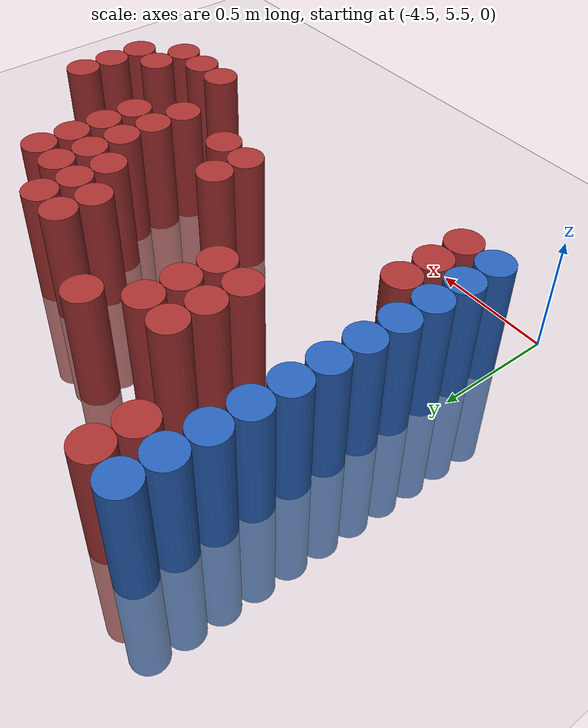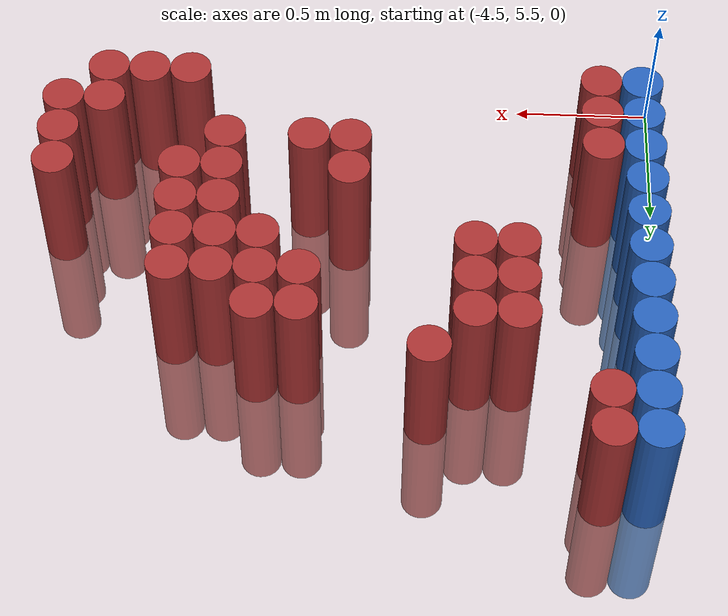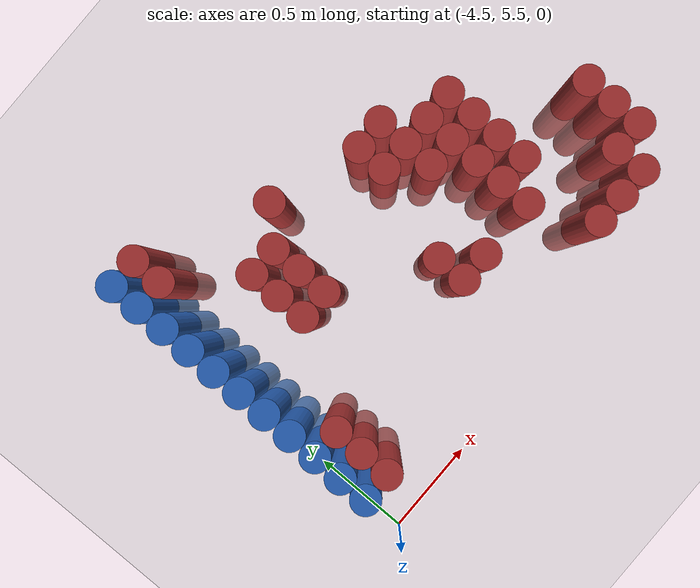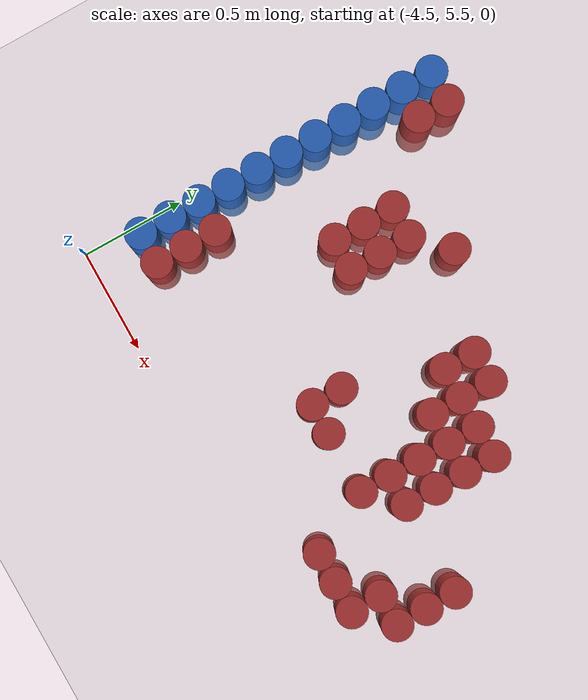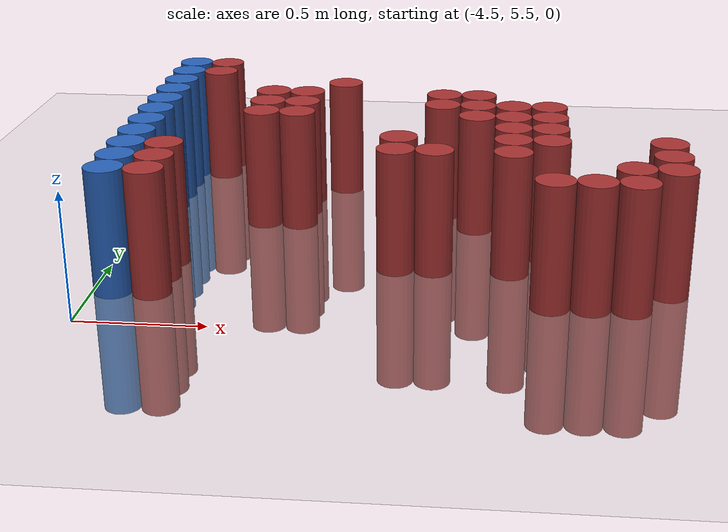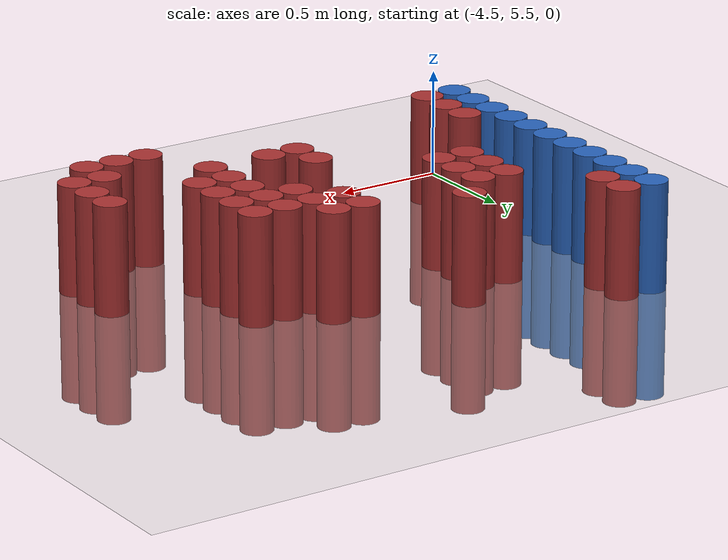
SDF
<sdf version="1.6">
 <world name="default">
  <model name="ground_plane">
   <static>1</static>
   <link name="link">
    <collision name="collision">
     <geometry><plane><normal>0 0 1</normal><size>100 100</size></plane></geometry>
     <surface><friction><ode><mu>100</mu><mu2>50</mu2></ode></friction></surface>
    </collision>
    <visual name="visual">
     <cast_shadows>0</cast_shadows>
     <geometry><plane><normal>0 0 1</normal><size>100 100</size></plane></geometry>
     <material>
      <script><uri>file://media/materials/scripts/gazebo.material</uri><name>Gazebo/Grey</name></script>
     </material>
    </visual>
   </link>
  </model>
  <model name="unit_cylinder_100">
   <static>1</static>
   <pose>-4.425000 5.775000 0.000000 0.000000 0.000000 0.000000</pose>
   <link name="link">
    <inertial>
     <mass>1</mass>
     <inertia><ixx>0.145833</ixx><ixy>0</ixy><ixz>0</ixz><iyy>0.145833</iyy><iyz>0</iyz><izz>0.125</izz></inertia>
    </inertial>
    <collision name="collision">
     <geometry><cylinder><radius>0.075000</radius><length>1</length></cylinder></geometry>
    </collision>
    <visual name="visual">
     <geometry><cylinder><radius>0.075000</radius><length>1</length></cylinder></geometry>
     <material>
      <ambient>0.152000 0.379000 0.720000 1</ambient>
      <diffuse>0.152000 0.379000 0.720000 1</diffuse>
     </material>
     <material>
      <script><name>Gazebo/Grey</name><uri>file://media/materials/scripts/gazebo.material</uri></script>
     </material>
    </visual>
   </link>
  </model>
  <model name="unit_cylinder_101">
   <static>1</static>
   <pose>-4.425000 5.925000 0.000000 0.000000 0.000000 0.000000</pose>
   <link name="link">
    <inertial>
     <mass>1</mass>
     <inertia><ixx>0.145833</ixx><ixy>0</ixy><ixz>0</ixz><iyy>0.145833</iyy><iyz>0</iyz><izz>0.125</izz></inertia>
    </inertial>
    <collision name="collision">
     <geometry><cylinder><radius>0.075000</radius><length>1</length></cylinder></geometry>
    </collision>
    <visual name="visual">
     <geometry><cylinder><radius>0.075000</radius><length>1</length></cylinder></geometry>
     <material>
      <ambient>0.152000 0.379000 0.720000 1</ambient>
      <diffuse>0.152000 0.379000 0.720000 1</diffuse>
     </material>
     <material>
      <script><name>Gazebo/Grey</name><uri>file://media/materials/scripts/gazebo.material</uri></script>
     </material>
    </visual>
   </link>
  </model>
  <model name="unit_cylinder_102">
   <static>1</static>
   <pose>-4.425000 6.075000 0.000000 0.000000 0.000000 0.000000</pose>
   <link name="link">
    <inertial>
     <mass>1</mass>
     <inertia><ixx>0.145833</ixx><ixy>0</ixy><ixz>0</ixz><iyy>0.145833</iyy><iyz>0</iyz><izz>0.125</izz></inertia>
    </inertial>
    <collision name="collision">
     <geometry><cylinder><radius>0.075000</radius><length>1</length></cylinder></geometry>
    </collision>
    <visual name="visual">
     <geometry><cylinder><radius>0.075000</radius><length>1</length></cylinder></geometry>
     <material>
      <ambient>0.152000 0.379000 0.720000 1</ambient>
      <diffuse>0.152000 0.379000 0.720000 1</diffuse>
     </material>
     <material>
      <script><name>Gazebo/Grey</name><uri>file://media/materials/scripts/gazebo.material</uri></script>
     </material>
    </visual>
   </link>
  </model>
  <model name="unit_cylinder_103">
   <static>1</static>
   <pose>-4.425000 6.225000 0.000000 0.000000 0.000000 0.000000</pose>
   <link name="link">
    <inertial>
     <mass>1</mass>
     <inertia><ixx>0.145833</ixx><ixy>0</ixy><ixz>0</ixz><iyy>0.145833</iyy><iyz>0</iyz><izz>0.125</izz></inertia>
    </inertial>
    <collision name="collision">
     <geometry><cylinder><radius>0.075000</radius><length>1</length></cylinder></geometry>
    </collision>
    <visual name="visual">
     <geometry><cylinder><radius>0.075000</radius><length>1</length></cylinder></geometry>
     <material>
      <ambient>0.152000 0.379000 0.720000 1</ambient>
      <diffuse>0.152000 0.379000 0.720000 1</diffuse>
     </material>
     <material>
      <script><name>Gazebo/Grey</name><uri>file://media/materials/scripts/gazebo.material</uri></script>
     </material>
    </visual>
   </link>
  </model>
  <model name="unit_cylinder_104">
   <static>1</static>
   <pose>-4.425000 6.375000 0.000000 0.000000 0.000000 0.000000</pose>
   <link name="link">
    <inertial>
     <mass>1</mass>
     <inertia><ixx>0.145833</ixx><ixy>0</ixy><ixz>0</ixz><iyy>0.145833</iyy><iyz>0</iyz><izz>0.125</izz></inertia>
    </inertial>
    <collision name="collision">
     <geometry><cylinder><radius>0.075000</radius><length>1</length></cylinder></geometry>
    </collision>
    <visual name="visual">
     <geometry><cylinder><radius>0.075000</radius><length>1</length></cylinder></geometry>
     <material>
      <ambient>0.152000 0.379000 0.720000 1</ambient>
      <diffuse>0.152000 0.379000 0.720000 1</diffuse>
     </material>
     <material>
      <script><name>Gazebo/Grey</name><uri>file://media/materials/scripts/gazebo.material</uri></script>
     </material>
    </visual>
   </link>
  </model>
  <model name="unit_cylinder_105">
   <static>1</static>
   <pose>-4.425000 6.525000 0.000000 0.000000 0.000000 0.000000</pose>
   <link name="link">
    <inertial>
     <mass>1</mass>
     <inertia><ixx>0.145833</ixx><ixy>0</ixy><ixz>0</ixz><iyy>0.145833</iyy><iyz>0</iyz><izz>0.125</izz></inertia>
    </inertial>
    <collision name="collision">
     <geometry><cylinder><radius>0.075000</radius><length>1</length></cylinder></geometry>
    </collision>
    <visual name="visual">
     <geometry><cylinder><radius>0.075000</radius><length>1</length></cylinder></geometry>
     <material>
      <ambient>0.152000 0.379000 0.720000 1</ambient>
      <diffuse>0.152000 0.379000 0.720000 1</diffuse>
     </material>
     <material>
      <script><name>Gazebo/Grey</name><uri>file://media/materials/scripts/gazebo.material</uri></script>
     </material>
    </visual>
   </link>
  </model>
  <model name="unit_cylinder_106">
   <static>1</static>
   <pose>-4.425000 6.675000 0.000000 0.000000 0.000000 0.000000</pose>
   <link name="link">
    <inertial>
     <mass>1</mass>
     <inertia><ixx>0.145833</ixx><ixy>0</ixy><ixz>0</ixz><iyy>0.145833</iyy><iyz>0</iyz><izz>0.125</izz></inertia>
    </inertial>
    <collision name="collision">
     <geometry><cylinder><radius>0.075000</radius><length>1</length></cylinder></geometry>
    </collision>
    <visual name="visual">
     <geometry><cylinder><radius>0.075000</radius><length>1</length></cylinder></geometry>
     <material>
      <ambient>0.152000 0.379000 0.720000 1</ambient>
      <diffuse>0.152000 0.379000 0.720000 1</diffuse>
     </material>
     <material>
      <script><name>Gazebo/Grey</name><uri>file://media/materials/scripts/gazebo.material</uri></script>
     </material>
    </visual>
   </link>
  </model>
  <model name="unit_cylinder_107">
   <static>1</static>
   <pose>-4.425000 6.825000 0.000000 0.000000 0.000000 0.000000</pose>
   <link name="link">
    <inertial>
     <mass>1</mass>
     <inertia><ixx>0.145833</ixx><ixy>0</ixy><ixz>0</ixz><iyy>0.145833</iyy><iyz>0</iyz><izz>0.125</izz></inertia>
    </inertial>
    <collision name="collision">
     <geometry><cylinder><radius>0.075000</radius><length>1</length></cylinder></geometry>
    </collision>
    <visual name="visual">
     <geometry><cylinder><radius>0.075000</radius><length>1</length></cylinder></geometry>
     <material>
      <ambient>0.152000 0.379000 0.720000 1</ambient>
      <diffuse>0.152000 0.379000 0.720000 1</diffuse>
     </material>
     <material>
      <script><name>Gazebo/Grey</name><uri>file://media/materials/scripts/gazebo.material</uri></script>
     </material>
    </visual>
   </link>
  </model>
  <model name="unit_cylinder_108">
   <static>1</static>
   <pose>-4.425000 6.975000 0.000000 0.000000 0.000000 0.000000</pose>
   <link name="link">
    <inertial>
     <mass>1</mass>
     <inertia><ixx>0.145833</ixx><ixy>0</ixy><ixz>0</ixz><iyy>0.145833</iyy><iyz>0</iyz><izz>0.125</izz></inertia>
    </inertial>
    <collision name="collision">
     <geometry><cylinder><radius>0.075000</radius><length>1</length></cylinder></geometry>
    </collision>
    <visual name="visual">
     <geometry><cylinder><radius>0.075000</radius><length>1</length></cylinder></geometry>
     <material>
      <ambient>0.152000 0.379000 0.720000 1</ambient>
      <diffuse>0.152000 0.379000 0.720000 1</diffuse>
     </material>
     <material>
      <script><name>Gazebo/Grey</name><uri>file://media/materials/scripts/gazebo.material</uri></script>
     </material>
    </visual>
   </link>
  </model>
  <model name="unit_cylinder_109">
   <static>1</static>
   <pose>-4.425000 7.125000 0.000000 0.000000 0.000000 0.000000</pose>
   <link name="link">
    <inertial>
     <mass>1</mass>
     <inertia><ixx>0.145833</ixx><ixy>0</ixy><ixz>0</ixz><iyy>0.145833</iyy><iyz>0</iyz><izz>0.125</izz></inertia>
    </inertial>
    <collision name="collision">
     <geometry><cylinder><radius>0.075000</radius><length>1</length></cylinder></geometry>
    </collision>
    <visual name="visual">
     <geometry><cylinder><radius>0.075000</radius><length>1</length></cylinder></geometry>
     <material>
      <ambient>0.152000 0.379000 0.720000 1</ambient>
      <diffuse>0.152000 0.379000 0.720000 1</diffuse>
     </material>
     <material>
      <script><name>Gazebo/Grey</name><uri>file://media/materials/scripts/gazebo.material</uri></script>
     </material>
    </visual>
   </link>
  </model>
  <model name="unit_cylinder_110">
   <static>1</static>
   <pose>-4.425000 7.275000 0.000000 0.000000 0.000000 0.000000</pose>
   <link name="link">
    <inertial>
     <mass>1</mass>
     <inertia><ixx>0.145833</ixx><ixy>0</ixy><ixz>0</ixz><iyy>0.145833</iyy><iyz>0</iyz><izz>0.125</izz></inertia>
    </inertial>
    <collision name="collision">
     <geometry><cylinder><radius>0.075000</radius><length>1</length></cylinder></geometry>
    </collision>
    <visual name="visual">
     <geometry><cylinder><radius>0.075000</radius><length>1</length></cylinder></geometry>
     <material>
      <ambient>0.152000 0.379000 0.720000 1</ambient>
      <diffuse>0.152000 0.379000 0.720000 1</diffuse>
     </material>
     <material>
      <script><name>Gazebo/Grey</name><uri>file://media/materials/scripts/gazebo.material</uri></script>
     </material>
    </visual>
   </link>
  </model>
  <model name="unit_cylinder_130">
   <static>1</static>
   <pose>-4.275000 5.775000 0.000000 0.000000 0.000000 0.000000</pose>
   <link name="link">
    <inertial>
     <mass>1</mass>
     <inertia><ixx>0.145833</ixx><ixy>0</ixy><ixz>0</ixz><iyy>0.145833</iyy><iyz>0</iyz><izz>0.125</izz></inertia>
    </inertial>
    <collision name="collision">
     <geometry><cylinder><radius>0.075000</radius><length>1</length></cylinder></geometry>
    </collision>
    <visual name="visual">
     <geometry><cylinder><radius>0.075000</radius><length>1</length></cylinder></geometry>
     <material>
      <ambient>0.648000 0.192000 0.192000 1</ambient>
      <diffuse>0.648000 0.192000 0.192000 1</diffuse>
     </material>
     <material>
      <script><name>Gazebo/Grey</name><uri>file://media/materials/scripts/gazebo.material</uri></script>
     </material>
    </visual>
   </link>
  </model>
  <model name="unit_cylinder_131">
   <static>1</static>
   <pose>-4.275000 5.925000 0.000000 0.000000 0.000000 0.000000</pose>
   <link name="link">
    <inertial>
     <mass>1</mass>
     <inertia><ixx>0.145833</ixx><ixy>0</ixy><ixz>0</ixz><iyy>0.145833</iyy><iyz>0</iyz><izz>0.125</izz></inertia>
    </inertial>
    <collision name="collision">
     <geometry><cylinder><radius>0.075000</radius><length>1</length></cylinder></geometry>
    </collision>
    <visual name="visual">
     <geometry><cylinder><radius>0.075000</radius><length>1</length></cylinder></geometry>
     <material>
      <ambient>0.648000 0.192000 0.192000 1</ambient>
      <diffuse>0.648000 0.192000 0.192000 1</diffuse>
     </material>
     <material>
      <script><name>Gazebo/Grey</name><uri>file://media/materials/scripts/gazebo.material</uri></script>
     </material>
    </visual>
   </link>
  </model>
  <model name="unit_cylinder_132">
   <static>1</static>
   <pose>-4.275000 6.075000 0.000000 0.000000 0.000000 0.000000</pose>
   <link name="link">
    <inertial>
     <mass>1</mass>
     <inertia><ixx>0.145833</ixx><ixy>0</ixy><ixz>0</ixz><iyy>0.145833</iyy><iyz>0</iyz><izz>0.125</izz></inertia>
    </inertial>
    <collision name="collision">
     <geometry><cylinder><radius>0.075000</radius><length>1</length></cylinder></geometry>
    </collision>
    <visual name="visual">
     <geometry><cylinder><radius>0.075000</radius><length>1</length></cylinder></geometry>
     <material>
      <ambient>0.648000 0.192000 0.192000 1</ambient>
      <diffuse>0.648000 0.192000 0.192000 1</diffuse>
     </material>
     <material>
      <script><name>Gazebo/Grey</name><uri>file://media/materials/scripts/gazebo.material</uri></script>
     </material>
    </visual>
   </link>
  </model>
  <model name="unit_cylinder_133">
   <static>1</static>
   <pose>-4.275000 7.125000 0.000000 0.000000 0.000000 0.000000</pose>
   <link name="link">
    <inertial>
     <mass>1</mass>
     <inertia><ixx>0.145833</ixx><ixy>0</ixy><ixz>0</ixz><iyy>0.145833</iyy><iyz>0</iyz><izz>0.125</izz></inertia>
    </inertial>
    <collision name="collision">
     <geometry><cylinder><radius>0.075000</radius><length>1</length></cylinder></geometry>
    </collision>
    <visual name="visual">
     <geometry><cylinder><radius>0.075000</radius><length>1</length></cylinder></geometry>
     <material>
      <ambient>0.648000 0.192000 0.192000 1</ambient>
      <diffuse>0.648000 0.192000 0.192000 1</diffuse>
     </material>
     <material>
      <script><name>Gazebo/Grey</name><uri>file://media/materials/scripts/gazebo.material</uri></script>
     </material>
    </visual>
   </link>
  </model>
  <model name="unit_cylinder_134">
   <static>1</static>
   <pose>-4.275000 7.275000 0.000000 0.000000 0.000000 0.000000</pose>
   <link name="link">
    <inertial>
     <mass>1</mass>
     <inertia><ixx>0.145833</ixx><ixy>0</ixy><ixz>0</ixz><iyy>0.145833</iyy><iyz>0</iyz><izz>0.125</izz></inertia>
    </inertial>
    <collision name="collision">
     <geometry><cylinder><radius>0.075000</radius><length>1</length></cylinder></geometry>
    </collision>
    <visual name="visual">
     <geometry><cylinder><radius>0.075000</radius><length>1</length></cylinder></geometry>
     <material>
      <ambient>0.648000 0.192000 0.192000 1</ambient>
      <diffuse>0.648000 0.192000 0.192000 1</diffuse>
     </material>
     <material>
      <script><name>Gazebo/Grey</name><uri>file://media/materials/scripts/gazebo.material</uri></script>
     </material>
    </visual>
   </link>
  </model>
  <model name="unit_cylinder_145">
   <static>1</static>
   <pose>-3.975000 6.525000 0.000000 0.000000 0.000000 0.000000</pose>
   <link name="link">
    <inertial>
     <mass>1</mass>
     <inertia><ixx>0.145833</ixx><ixy>0</ixy><ixz>0</ixz><iyy>0.145833</iyy><iyz>0</iyz><izz>0.125</izz></inertia>
    </inertial>
    <collision name="collision">
     <geometry><cylinder><radius>0.075000</radius><length>1</length></cylinder></geometry>
    </collision>
    <visual name="visual">
     <geometry><cylinder><radius>0.075000</radius><length>1</length></cylinder></geometry>
     <material>
      <ambient>0.648000 0.192000 0.192000 1</ambient>
      <diffuse>0.648000 0.192000 0.192000 1</diffuse>
     </material>
     <material>
      <script><name>Gazebo/Grey</name><uri>file://media/materials/scripts/gazebo.material</uri></script>
     </material>
    </visual>
   </link>
  </model>
  <model name="unit_cylinder_146">
   <static>1</static>
   <pose>-3.975000 6.675000 0.000000 0.000000 0.000000 0.000000</pose>
   <link name="link">
    <inertial>
     <mass>1</mass>
     <inertia><ixx>0.145833</ixx><ixy>0</ixy><ixz>0</ixz><iyy>0.145833</iyy><iyz>0</iyz><izz>0.125</izz></inertia>
    </inertial>
    <collision name="collision">
     <geometry><cylinder><radius>0.075000</radius><length>1</length></cylinder></geometry>
    </collision>
    <visual name="visual">
     <geometry><cylinder><radius>0.075000</radius><length>1</length></cylinder></geometry>
     <material>
      <ambient>0.648000 0.192000 0.192000 1</ambient>
      <diffuse>0.648000 0.192000 0.192000 1</diffuse>
     </material>
     <material>
      <script><name>Gazebo/Grey</name><uri>file://media/materials/scripts/gazebo.material</uri></script>
     </material>
    </visual>
   </link>
  </model>
  <model name="unit_cylinder_147">
   <static>1</static>
   <pose>-3.975000 6.825000 0.000000 0.000000 0.000000 0.000000</pose>
   <link name="link">
    <inertial>
     <mass>1</mass>
     <inertia><ixx>0.145833</ixx><ixy>0</ixy><ixz>0</ixz><iyy>0.145833</iyy><iyz>0</iyz><izz>0.125</izz></inertia>
    </inertial>
    <collision name="collision">
     <geometry><cylinder><radius>0.075000</radius><length>1</length></cylinder></geometry>
    </collision>
    <visual name="visual">
     <geometry><cylinder><radius>0.075000</radius><length>1</length></cylinder></geometry>
     <material>
      <ambient>0.648000 0.192000 0.192000 1</ambient>
      <diffuse>0.648000 0.192000 0.192000 1</diffuse>
     </material>
     <material>
      <script><name>Gazebo/Grey</name><uri>file://media/materials/scripts/gazebo.material</uri></script>
     </material>
    </visual>
   </link>
  </model>
  <model name="unit_cylinder_149">
   <static>1</static>
   <pose>-3.825000 6.525000 0.000000 0.000000 0.000000 0.000000</pose>
   <link name="link">
    <inertial>
     <mass>1</mass>
     <inertia><ixx>0.145833</ixx><ixy>0</ixy><ixz>0</ixz><iyy>0.145833</iyy><iyz>0</iyz><izz>0.125</izz></inertia>
    </inertial>
    <collision name="collision">
     <geometry><cylinder><radius>0.075000</radius><length>1</length></cylinder></geometry>
    </collision>
    <visual name="visual">
     <geometry><cylinder><radius>0.075000</radius><length>1</length></cylinder></geometry>
     <material>
      <ambient>0.648000 0.192000 0.192000 1</ambient>
      <diffuse>0.648000 0.192000 0.192000 1</diffuse>
     </material>
     <material>
      <script><name>Gazebo/Grey</name><uri>file://media/materials/scripts/gazebo.material</uri></script>
     </material>
    </visual>
   </link>
  </model>
  <model name="unit_cylinder_150">
   <static>1</static>
   <pose>-3.825000 6.675000 0.000000 0.000000 0.000000 0.000000</pose>
   <link name="link">
    <inertial>
     <mass>1</mass>
     <inertia><ixx>0.145833</ixx><ixy>0</ixy><ixz>0</ixz><iyy>0.145833</iyy><iyz>0</iyz><izz>0.125</izz></inertia>
    </inertial>
    <collision name="collision">
     <geometry><cylinder><radius>0.075000</radius><length>1</length></cylinder></geometry>
    </collision>
    <visual name="visual">
     <geometry><cylinder><radius>0.075000</radius><length>1</length></cylinder></geometry>
     <material>
      <ambient>0.648000 0.192000 0.192000 1</ambient>
      <diffuse>0.648000 0.192000 0.192000 1</diffuse>
     </material>
     <material>
      <script><name>Gazebo/Grey</name><uri>file://media/materials/scripts/gazebo.material</uri></script>
     </material>
    </visual>
   </link>
  </model>
  <model name="unit_cylinder_151">
   <static>1</static>
   <pose>-3.825000 6.825000 0.000000 0.000000 0.000000 0.000000</pose>
   <link name="link">
    <inertial>
     <mass>1</mass>
     <inertia><ixx>0.145833</ixx><ixy>0</ixy><ixz>0</ixz><iyy>0.145833</iyy><iyz>0</iyz><izz>0.125</izz></inertia>
    </inertial>
    <collision name="collision">
     <geometry><cylinder><radius>0.075000</radius><length>1</length></cylinder></geometry>
    </collision>
    <visual name="visual">
     <geometry><cylinder><radius>0.075000</radius><length>1</length></cylinder></geometry>
     <material>
      <ambient>0.648000 0.192000 0.192000 1</ambient>
      <diffuse>0.648000 0.192000 0.192000 1</diffuse>
     </material>
     <material>
      <script><name>Gazebo/Grey</name><uri>file://media/materials/scripts/gazebo.material</uri></script>
     </material>
    </visual>
   </link>
  </model>
  <model name="unit_cylinder_155">
   <static>1</static>
   <pose>-3.675000 6.975000 0.000000 0.000000 0.000000 0.000000</pose>
   <link name="link">
    <inertial>
     <mass>1</mass>
     <inertia><ixx>0.145833</ixx><ixy>0</ixy><ixz>0</ixz><iyy>0.145833</iyy><iyz>0</iyz><izz>0.125</izz></inertia>
    </inertial>
    <collision name="collision">
     <geometry><cylinder><radius>0.075000</radius><length>1</length></cylinder></geometry>
    </collision>
    <visual name="visual">
     <geometry><cylinder><radius>0.075000</radius><length>1</length></cylinder></geometry>
     <material>
      <ambient>0.648000 0.192000 0.192000 1</ambient>
      <diffuse>0.648000 0.192000 0.192000 1</diffuse>
     </material>
     <material>
      <script><name>Gazebo/Grey</name><uri>file://media/materials/scripts/gazebo.material</uri></script>
     </material>
    </visual>
   </link>
  </model>
  <model name="unit_cylinder_165">
   <static>1</static>
   <pose>-3.375000 6.075000 0.000000 0.000000 0.000000 0.000000</pose>
   <link name="link">
    <inertial>
     <mass>1</mass>
     <inertia><ixx>0.145833</ixx><ixy>0</ixy><ixz>0</ixz><iyy>0.145833</iyy><iyz>0</iyz><izz>0.125</izz></inertia>
    </inertial>
    <collision name="collision">
     <geometry><cylinder><radius>0.075000</radius><length>1</length></cylinder></geometry>
    </collision>
    <visual name="visual">
     <geometry><cylinder><radius>0.075000</radius><length>1</length></cylinder></geometry>
     <material>
      <ambient>0.648000 0.192000 0.192000 1</ambient>
      <diffuse>0.648000 0.192000 0.192000 1</diffuse>
     </material>
     <material>
      <script><name>Gazebo/Grey</name><uri>file://media/materials/scripts/gazebo.material</uri></script>
     </material>
    </visual>
   </link>
  </model>
  <model name="unit_cylinder_166">
   <static>1</static>
   <pose>-3.375000 6.225000 0.000000 0.000000 0.000000 0.000000</pose>
   <link name="link">
    <inertial>
     <mass>1</mass>
     <inertia><ixx>0.145833</ixx><ixy>0</ixy><ixz>0</ixz><iyy>0.145833</iyy><iyz>0</iyz><izz>0.125</izz></inertia>
    </inertial>
    <collision name="collision">
     <geometry><cylinder><radius>0.075000</radius><length>1</length></cylinder></geometry>
    </collision>
    <visual name="visual">
     <geometry><cylinder><radius>0.075000</radius><length>1</length></cylinder></geometry>
     <material>
      <ambient>0.648000 0.192000 0.192000 1</ambient>
      <diffuse>0.648000 0.192000 0.192000 1</diffuse>
     </material>
     <material>
      <script><name>Gazebo/Grey</name><uri>file://media/materials/scripts/gazebo.material</uri></script>
     </material>
    </visual>
   </link>
  </model>
  <model name="unit_cylinder_171">
   <static>1</static>
   <pose>-3.225000 6.075000 0.000000 0.000000 0.000000 0.000000</pose>
   <link name="link">
    <inertial>
     <mass>1</mass>
     <inertia><ixx>0.145833</ixx><ixy>0</ixy><ixz>0</ixz><iyy>0.145833</iyy><iyz>0</iyz><izz>0.125</izz></inertia>
    </inertial>
    <collision name="collision">
     <geometry><cylinder><radius>0.075000</radius><length>1</length></cylinder></geometry>
    </collision>
    <visual name="visual">
     <geometry><cylinder><radius>0.075000</radius><length>1</length></cylinder></geometry>
     <material>
      <ambient>0.648000 0.192000 0.192000 1</ambient>
      <diffuse>0.648000 0.192000 0.192000 1</diffuse>
     </material>
     <material>
      <script><name>Gazebo/Grey</name><uri>file://media/materials/scripts/gazebo.material</uri></script>
     </material>
    </visual>
   </link>
  </model>
  <model name="unit_cylinder_172">
   <static>1</static>
   <pose>-3.225000 6.675000 0.000000 0.000000 0.000000 0.000000</pose>
   <link name="link">
    <inertial>
     <mass>1</mass>
     <inertia><ixx>0.145833</ixx><ixy>0</ixy><ixz>0</ixz><iyy>0.145833</iyy><iyz>0</iyz><izz>0.125</izz></inertia>
    </inertial>
    <collision name="collision">
     <geometry><cylinder><radius>0.075000</radius><length>1</length></cylinder></geometry>
    </collision>
    <visual name="visual">
     <geometry><cylinder><radius>0.075000</radius><length>1</length></cylinder></geometry>
     <material>
      <ambient>0.648000 0.192000 0.192000 1</ambient>
      <diffuse>0.648000 0.192000 0.192000 1</diffuse>
     </material>
     <material>
      <script><name>Gazebo/Grey</name><uri>file://media/materials/scripts/gazebo.material</uri></script>
     </material>
    </visual>
   </link>
  </model>
  <model name="unit_cylinder_173">
   <static>1</static>
   <pose>-3.225000 6.825000 0.000000 0.000000 0.000000 0.000000</pose>
   <link name="link">
    <inertial>
     <mass>1</mass>
     <inertia><ixx>0.145833</ixx><ixy>0</ixy><ixz>0</ixz><iyy>0.145833</iyy><iyz>0</iyz><izz>0.125</izz></inertia>
    </inertial>
    <collision name="collision">
     <geometry><cylinder><radius>0.075000</radius><length>1</length></cylinder></geometry>
    </collision>
    <visual name="visual">
     <geometry><cylinder><radius>0.075000</radius><length>1</length></cylinder></geometry>
     <material>
      <ambient>0.648000 0.192000 0.192000 1</ambient>
      <diffuse>0.648000 0.192000 0.192000 1</diffuse>
     </material>
     <material>
      <script><name>Gazebo/Grey</name><uri>file://media/materials/scripts/gazebo.material</uri></script>
     </material>
    </visual>
   </link>
  </model>
  <model name="unit_cylinder_179">
   <static>1</static>
   <pose>-3.075000 6.525000 0.000000 0.000000 0.000000 0.000000</pose>
   <link name="link">
    <inertial>
     <mass>1</mass>
     <inertia><ixx>0.145833</ixx><ixy>0</ixy><ixz>0</ixz><iyy>0.145833</iyy><iyz>0</iyz><izz>0.125</izz></inertia>
    </inertial>
    <collision name="collision">
     <geometry><cylinder><radius>0.075000</radius><length>1</length></cylinder></geometry>
    </collision>
    <visual name="visual">
     <geometry><cylinder><radius>0.075000</radius><length>1</length></cylinder></geometry>
     <material>
      <ambient>0.648000 0.192000 0.192000 1</ambient>
      <diffuse>0.648000 0.192000 0.192000 1</diffuse>
     </material>
     <material>
      <script><name>Gazebo/Grey</name><uri>file://media/materials/scripts/gazebo.material</uri></script>
     </material>
    </visual>
   </link>
  </model>
  <model name="unit_cylinder_180">
   <static>1</static>
   <pose>-3.075000 6.675000 0.000000 0.000000 0.000000 0.000000</pose>
   <link name="link">
    <inertial>
     <mass>1</mass>
     <inertia><ixx>0.145833</ixx><ixy>0</ixy><ixz>0</ixz><iyy>0.145833</iyy><iyz>0</iyz><izz>0.125</izz></inertia>
    </inertial>
    <collision name="collision">
     <geometry><cylinder><radius>0.075000</radius><length>1</length></cylinder></geometry>
    </collision>
    <visual name="visual">
     <geometry><cylinder><radius>0.075000</radius><length>1</length></cylinder></geometry>
     <material>
      <ambient>0.648000 0.192000 0.192000 1</ambient>
      <diffuse>0.648000 0.192000 0.192000 1</diffuse>
     </material>
     <material>
      <script><name>Gazebo/Grey</name><uri>file://media/materials/scripts/gazebo.material</uri></script>
     </material>
    </visual>
   </link>
  </model>
  <model name="unit_cylinder_181">
   <static>1</static>
   <pose>-3.075000 6.825000 0.000000 0.000000 0.000000 0.000000</pose>
   <link name="link">
    <inertial>
     <mass>1</mass>
     <inertia><ixx>0.145833</ixx><ixy>0</ixy><ixz>0</ixz><iyy>0.145833</iyy><iyz>0</iyz><izz>0.125</izz></inertia>
    </inertial>
    <collision name="collision">
     <geometry><cylinder><radius>0.075000</radius><length>1</length></cylinder></geometry>
    </collision>
    <visual name="visual">
     <geometry><cylinder><radius>0.075000</radius><length>1</length></cylinder></geometry>
     <material>
      <ambient>0.648000 0.192000 0.192000 1</ambient>
      <diffuse>0.648000 0.192000 0.192000 1</diffuse>
     </material>
     <material>
      <script><name>Gazebo/Grey</name><uri>file://media/materials/scripts/gazebo.material</uri></script>
     </material>
    </visual>
   </link>
  </model>
  <model name="unit_cylinder_185">
   <static>1</static>
   <pose>-2.925000 6.075000 0.000000 0.000000 0.000000 0.000000</pose>
   <link name="link">
    <inertial>
     <mass>1</mass>
     <inertia><ixx>0.145833</ixx><ixy>0</ixy><ixz>0</ixz><iyy>0.145833</iyy><iyz>0</iyz><izz>0.125</izz></inertia>
    </inertial>
    <collision name="collision">
     <geometry><cylinder><radius>0.075000</radius><length>1</length></cylinder></geometry>
    </collision>
    <visual name="visual">
     <geometry><cylinder><radius>0.075000</radius><length>1</length></cylinder></geometry>
     <material>
      <ambient>0.648000 0.192000 0.192000 1</ambient>
      <diffuse>0.648000 0.192000 0.192000 1</diffuse>
     </material>
     <material>
      <script><name>Gazebo/Grey</name><uri>file://media/materials/scripts/gazebo.material</uri></script>
     </material>
    </visual>
   </link>
  </model>
  <model name="unit_cylinder_186">
   <static>1</static>
   <pose>-2.925000 6.225000 0.000000 0.000000 0.000000 0.000000</pose>
   <link name="link">
    <inertial>
     <mass>1</mass>
     <inertia><ixx>0.145833</ixx><ixy>0</ixy><ixz>0</ixz><iyy>0.145833</iyy><iyz>0</iyz><izz>0.125</izz></inertia>
    </inertial>
    <collision name="collision">
     <geometry><cylinder><radius>0.075000</radius><length>1</length></cylinder></geometry>
    </collision>
    <visual name="visual">
     <geometry><cylinder><radius>0.075000</radius><length>1</length></cylinder></geometry>
     <material>
      <ambient>0.648000 0.192000 0.192000 1</ambient>
      <diffuse>0.648000 0.192000 0.192000 1</diffuse>
     </material>
     <material>
      <script><name>Gazebo/Grey</name><uri>file://media/materials/scripts/gazebo.material</uri></script>
     </material>
    </visual>
   </link>
  </model>
  <model name="unit_cylinder_187">
   <static>1</static>
   <pose>-2.925000 6.375000 0.000000 0.000000 0.000000 0.000000</pose>
   <link name="link">
    <inertial>
     <mass>1</mass>
     <inertia><ixx>0.145833</ixx><ixy>0</ixy><ixz>0</ixz><iyy>0.145833</iyy><iyz>0</iyz><izz>0.125</izz></inertia>
    </inertial>
    <collision name="collision">
     <geometry><cylinder><radius>0.075000</radius><length>1</length></cylinder></geometry>
    </collision>
    <visual name="visual">
     <geometry><cylinder><radius>0.075000</radius><length>1</length></cylinder></geometry>
     <material>
      <ambient>0.648000 0.192000 0.192000 1</ambient>
      <diffuse>0.648000 0.192000 0.192000 1</diffuse>
     </material>
     <material>
      <script><name>Gazebo/Grey</name><uri>file://media/materials/scripts/gazebo.material</uri></script>
     </material>
    </visual>
   </link>
  </model>
  <model name="unit_cylinder_188">
   <static>1</static>
   <pose>-2.925000 6.525000 0.000000 0.000000 0.000000 0.000000</pose>
   <link name="link">
    <inertial>
     <mass>1</mass>
     <inertia><ixx>0.145833</ixx><ixy>0</ixy><ixz>0</ixz><iyy>0.145833</iyy><iyz>0</iyz><izz>0.125</izz></inertia>
    </inertial>
    <collision name="collision">
     <geometry><cylinder><radius>0.075000</radius><length>1</length></cylinder></geometry>
    </collision>
    <visual name="visual">
     <geometry><cylinder><radius>0.075000</radius><length>1</length></cylinder></geometry>
     <material>
      <ambient>0.648000 0.192000 0.192000 1</ambient>
      <diffuse>0.648000 0.192000 0.192000 1</diffuse>
     </material>
     <material>
      <script><name>Gazebo/Grey</name><uri>file://media/materials/scripts/gazebo.material</uri></script>
     </material>
    </visual>
   </link>
  </model>
  <model name="unit_cylinder_189">
   <static>1</static>
   <pose>-2.925000 6.675000 0.000000 0.000000 0.000000 0.000000</pose>
   <link name="link">
    <inertial>
     <mass>1</mass>
     <inertia><ixx>0.145833</ixx><ixy>0</ixy><ixz>0</ixz><iyy>0.145833</iyy><iyz>0</iyz><izz>0.125</izz></inertia>
    </inertial>
    <collision name="collision">
     <geometry><cylinder><radius>0.075000</radius><length>1</length></cylinder></geometry>
    </collision>
    <visual name="visual">
     <geometry><cylinder><radius>0.075000</radius><length>1</length></cylinder></geometry>
     <material>
      <ambient>0.648000 0.192000 0.192000 1</ambient>
      <diffuse>0.648000 0.192000 0.192000 1</diffuse>
     </material>
     <material>
      <script><name>Gazebo/Grey</name><uri>file://media/materials/scripts/gazebo.material</uri></script>
     </material>
    </visual>
   </link>
  </model>
  <model name="unit_cylinder_197">
   <static>1</static>
   <pose>-2.775000 5.775000 0.000000 0.000000 0.000000 0.000000</pose>
   <link name="link">
    <inertial>
     <mass>1</mass>
     <inertia><ixx>0.145833</ixx><ixy>0</ixy><ixz>0</ixz><iyy>0.145833</iyy><iyz>0</iyz><izz>0.125</izz></inertia>
    </inertial>
    <collision name="collision">
     <geometry><cylinder><radius>0.075000</radius><length>1</length></cylinder></geometry>
    </collision>
    <visual name="visual">
     <geometry><cylinder><radius>0.075000</radius><length>1</length></cylinder></geometry>
     <material>
      <ambient>0.648000 0.192000 0.192000 1</ambient>
      <diffuse>0.648000 0.192000 0.192000 1</diffuse>
     </material>
     <material>
      <script><name>Gazebo/Grey</name><uri>file://media/materials/scripts/gazebo.material</uri></script>
     </material>
    </visual>
   </link>
  </model>
  <model name="unit_cylinder_198">
   <static>1</static>
   <pose>-2.775000 6.225000 0.000000 0.000000 0.000000 0.000000</pose>
   <link name="link">
    <inertial>
     <mass>1</mass>
     <inertia><ixx>0.145833</ixx><ixy>0</ixy><ixz>0</ixz><iyy>0.145833</iyy><iyz>0</iyz><izz>0.125</izz></inertia>
    </inertial>
    <collision name="collision">
     <geometry><cylinder><radius>0.075000</radius><length>1</length></cylinder></geometry>
    </collision>
    <visual name="visual">
     <geometry><cylinder><radius>0.075000</radius><length>1</length></cylinder></geometry>
     <material>
      <ambient>0.648000 0.192000 0.192000 1</ambient>
      <diffuse>0.648000 0.192000 0.192000 1</diffuse>
     </material>
     <material>
      <script><name>Gazebo/Grey</name><uri>file://media/materials/scripts/gazebo.material</uri></script>
     </material>
    </visual>
   </link>
  </model>
  <model name="unit_cylinder_199">
   <static>1</static>
   <pose>-2.775000 6.375000 0.000000 0.000000 0.000000 0.000000</pose>
   <link name="link">
    <inertial>
     <mass>1</mass>
     <inertia><ixx>0.145833</ixx><ixy>0</ixy><ixz>0</ixz><iyy>0.145833</iyy><iyz>0</iyz><izz>0.125</izz></inertia>
    </inertial>
    <collision name="collision">
     <geometry><cylinder><radius>0.075000</radius><length>1</length></cylinder></geometry>
    </collision>
    <visual name="visual">
     <geometry><cylinder><radius>0.075000</radius><length>1</length></cylinder></geometry>
     <material>
      <ambient>0.648000 0.192000 0.192000 1</ambient>
      <diffuse>0.648000 0.192000 0.192000 1</diffuse>
     </material>
     <material>
      <script><name>Gazebo/Grey</name><uri>file://media/materials/scripts/gazebo.material</uri></script>
     </material>
    </visual>
   </link>
  </model>
  <model name="unit_cylinder_200">
   <static>1</static>
   <pose>-2.775000 6.525000 0.000000 0.000000 0.000000 0.000000</pose>
   <link name="link">
    <inertial>
     <mass>1</mass>
     <inertia><ixx>0.145833</ixx><ixy>0</ixy><ixz>0</ixz><iyy>0.145833</iyy><iyz>0</iyz><izz>0.125</izz></inertia>
    </inertial>
    <collision name="collision">
     <geometry><cylinder><radius>0.075000</radius><length>1</length></cylinder></geometry>
    </collision>
    <visual name="visual">
     <geometry><cylinder><radius>0.075000</radius><length>1</length></cylinder></geometry>
     <material>
      <ambient>0.648000 0.192000 0.192000 1</ambient>
      <diffuse>0.648000 0.192000 0.192000 1</diffuse>
     </material>
     <material>
      <script><name>Gazebo/Grey</name><uri>file://media/materials/scripts/gazebo.material</uri></script>
     </material>
    </visual>
   </link>
  </model>
  <model name="unit_cylinder_201">
   <static>1</static>
   <pose>-2.775000 6.675000 0.000000 0.000000 0.000000 0.000000</pose>
   <link name="link">
    <inertial>
     <mass>1</mass>
     <inertia><ixx>0.145833</ixx><ixy>0</ixy><ixz>0</ixz><iyy>0.145833</iyy><iyz>0</iyz><izz>0.125</izz></inertia>
    </inertial>
    <collision name="collision">
     <geometry><cylinder><radius>0.075000</radius><length>1</length></cylinder></geometry>
    </collision>
    <visual name="visual">
     <geometry><cylinder><radius>0.075000</radius><length>1</length></cylinder></geometry>
     <material>
      <ambient>0.648000 0.192000 0.192000 1</ambient>
      <diffuse>0.648000 0.192000 0.192000 1</diffuse>
     </material>
     <material>
      <script><name>Gazebo/Grey</name><uri>file://media/materials/scripts/gazebo.material</uri></script>
     </material>
    </visual>
   </link>
  </model>
  <model name="unit_cylinder_208">
   <static>1</static>
   <pose>-2.625000 5.775000 0.000000 0.000000 0.000000 0.000000</pose>
   <link name="link">
    <inertial>
     <mass>1</mass>
     <inertia><ixx>0.145833</ixx><ixy>0</ixy><ixz>0</ixz><iyy>0.145833</iyy><iyz>0</iyz><izz>0.125</izz></inertia>
    </inertial>
    <collision name="collision">
     <geometry><cylinder><radius>0.075000</radius><length>1</length></cylinder></geometry>
    </collision>
    <visual name="visual">
     <geometry><cylinder><radius>0.075000</radius><length>1</length></cylinder></geometry>
     <material>
      <ambient>0.648000 0.192000 0.192000 1</ambient>
      <diffuse>0.648000 0.192000 0.192000 1</diffuse>
     </material>
     <material>
      <script><name>Gazebo/Grey</name><uri>file://media/materials/scripts/gazebo.material</uri></script>
     </material>
    </visual>
   </link>
  </model>
  <model name="unit_cylinder_210">
   <static>1</static>
   <pose>-2.475000 5.775000 0.000000 0.000000 0.000000 0.000000</pose>
   <link name="link">
    <inertial>
     <mass>1</mass>
     <inertia><ixx>0.145833</ixx><ixy>0</ixy><ixz>0</ixz><iyy>0.145833</iyy><iyz>0</iyz><izz>0.125</izz></inertia>
    </inertial>
    <collision name="collision">
     <geometry><cylinder><radius>0.075000</radius><length>1</length></cylinder></geometry>
    </collision>
    <visual name="visual">
     <geometry><cylinder><radius>0.075000</radius><length>1</length></cylinder></geometry>
     <material>
      <ambient>0.648000 0.192000 0.192000 1</ambient>
      <diffuse>0.648000 0.192000 0.192000 1</diffuse>
     </material>
     <material>
      <script><name>Gazebo/Grey</name><uri>file://media/materials/scripts/gazebo.material</uri></script>
     </material>
    </visual>
   </link>
  </model>
  <model name="unit_cylinder_211">
   <static>1</static>
   <pose>-2.475000 5.925000 0.000000 0.000000 0.000000 0.000000</pose>
   <link name="link">
    <inertial>
     <mass>1</mass>
     <inertia><ixx>0.145833</ixx><ixy>0</ixy><ixz>0</ixz><iyy>0.145833</iyy><iyz>0</iyz><izz>0.125</izz></inertia>
    </inertial>
    <collision name="collision">
     <geometry><cylinder><radius>0.075000</radius><length>1</length></cylinder></geometry>
    </collision>
    <visual name="visual">
     <geometry><cylinder><radius>0.075000</radius><length>1</length></cylinder></geometry>
     <material>
      <ambient>0.648000 0.192000 0.192000 1</ambient>
      <diffuse>0.648000 0.192000 0.192000 1</diffuse>
     </material>
     <material>
      <script><name>Gazebo/Grey</name><uri>file://media/materials/scripts/gazebo.material</uri></script>
     </material>
    </visual>
   </link>
  </model>
  <model name="unit_cylinder_213">
   <static>1</static>
   <pose>-2.325000 5.925000 0.000000 0.000000 0.000000 0.000000</pose>
   <link name="link">
    <inertial>
     <mass>1</mass>
     <inertia><ixx>0.145833</ixx><ixy>0</ixy><ixz>0</ixz><iyy>0.145833</iyy><iyz>0</iyz><izz>0.125</izz></inertia>
    </inertial>
    <collision name="collision">
     <geometry><cylinder><radius>0.075000</radius><length>1</length></cylinder></geometry>
    </collision>
    <visual name="visual">
     <geometry><cylinder><radius>0.075000</radius><length>1</length></cylinder></geometry>
     <material>
      <ambient>0.648000 0.192000 0.192000 1</ambient>
      <diffuse>0.648000 0.192000 0.192000 1</diffuse>
     </material>
     <material>
      <script><name>Gazebo/Grey</name><uri>file://media/materials/scripts/gazebo.material</uri></script>
     </material>
    </visual>
   </link>
  </model>
  <model name="unit_cylinder_214">
   <static>1</static>
   <pose>-2.325000 6.075000 0.000000 0.000000 0.000000 0.000000</pose>
   <link name="link">
    <inertial>
     <mass>1</mass>
     <inertia><ixx>0.145833</ixx><ixy>0</ixy><ixz>0</ixz><iyy>0.145833</iyy><iyz>0</iyz><izz>0.125</izz></inertia>
    </inertial>
    <collision name="collision">
     <geometry><cylinder><radius>0.075000</radius><length>1</length></cylinder></geometry>
    </collision>
    <visual name="visual">
     <geometry><cylinder><radius>0.075000</radius><length>1</length></cylinder></geometry>
     <material>
      <ambient>0.648000 0.192000 0.192000 1</ambient>
      <diffuse>0.648000 0.192000 0.192000 1</diffuse>
     </material>
     <material>
      <script><name>Gazebo/Grey</name><uri>file://media/materials/scripts/gazebo.material</uri></script>
     </material>
    </visual>
   </link>
  </model>
  <model name="unit_cylinder_215">
   <static>1</static>
   <pose>-2.325000 6.225000 0.000000 0.000000 0.000000 0.000000</pose>
   <link name="link">
    <inertial>
     <mass>1</mass>
     <inertia><ixx>0.145833</ixx><ixy>0</ixy><ixz>0</ixz><iyy>0.145833</iyy><iyz>0</iyz><izz>0.125</izz></inertia>
    </inertial>
    <collision name="collision">
     <geometry><cylinder><radius>0.075000</radius><length>1</length></cylinder></geometry>
    </collision>
    <visual name="visual">
     <geometry><cylinder><radius>0.075000</radius><length>1</length></cylinder></geometry>
     <material>
      <ambient>0.648000 0.192000 0.192000 1</ambient>
      <diffuse>0.648000 0.192000 0.192000 1</diffuse>
     </material>
     <material>
      <script><name>Gazebo/Grey</name><uri>file://media/materials/scripts/gazebo.material</uri></script>
     </material>
    </visual>
   </link>
  </model>
 </world>
</sdf>
